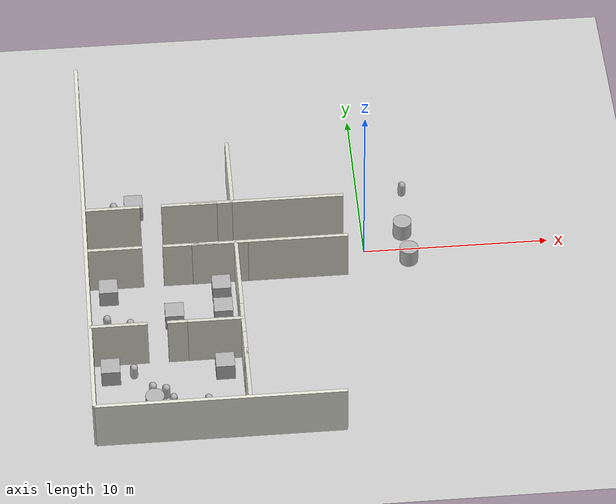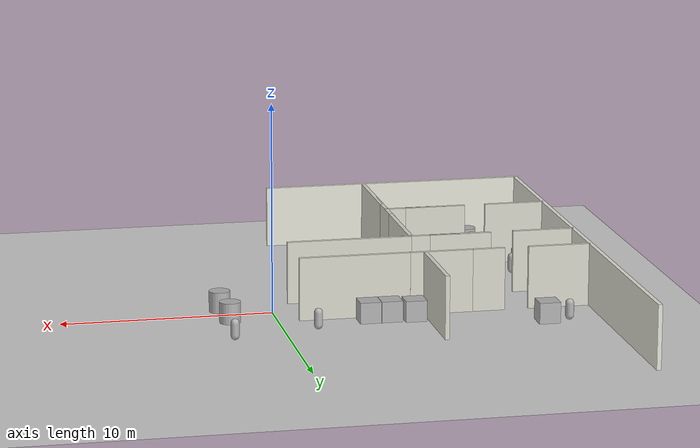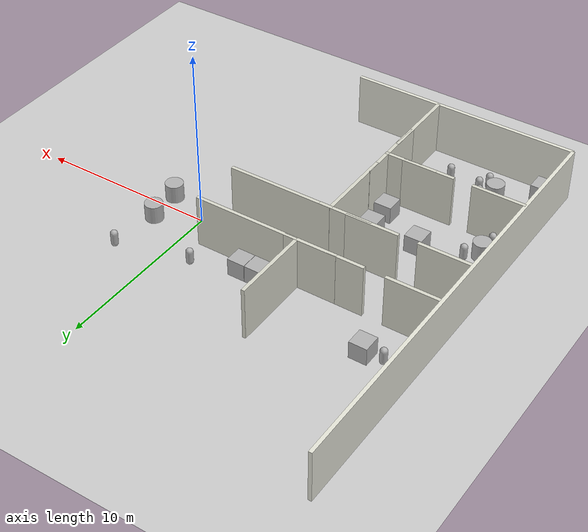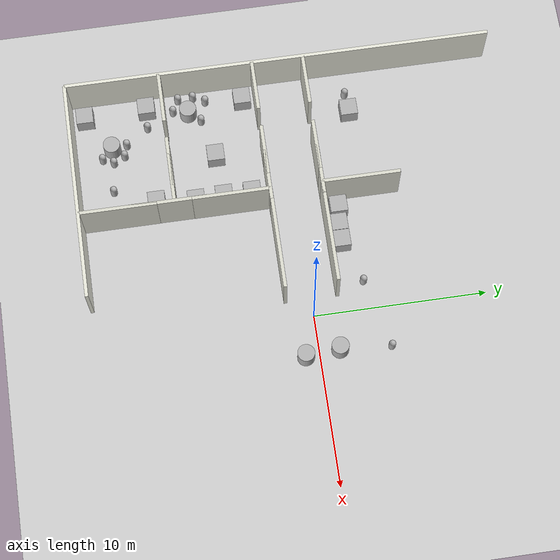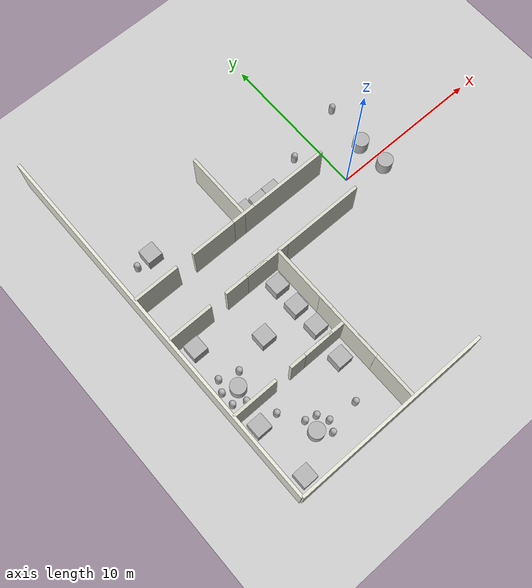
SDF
<sdf version="1.10">
 <world name="default">
  <model name="ground_plane">
   <static>true</static>
   <link name="link">
    <collision name="collision">
     <geometry><plane><normal>0 0 1</normal><size>100 100</size></plane></geometry>
    </collision>
    <visual name="visual">
     <geometry><plane><normal>0 0 1</normal><size>100 100</size></plane></geometry>
     <material>
      <ambient>0.800000012 0.800000012 0.800000012 1</ambient>
      <diffuse>0.800000012 0.800000012 0.800000012 1</diffuse>
      <specular>0.100000001 0.100000001 0.100000001 1</specular>
     </material>
    </visual>
    <inertial>
     <mass>1</mass>
     <inertia><ixx>1</ixx><ixy>0</ixy><ixz>0</ixz><iyy>1</iyy><iyz>0</iyz><izz>1</izz></inertia>
    </inertial>
   </link>
  </model>
  <model name="south_wall_west">
   <static>true</static>
   <pose>-8.5 -12.5 1.5 0 0 0</pose>
   <link name="link">
    <collision name="collision"><geometry><box><size>13 0.20000000000000001 3</size></box></geometry></collision>
    <visual name="visual">
     <geometry><box><size>13 0.20000000000000001 3</size></box></geometry>
     <material>
      <ambient>0.899999976 0.899999976 0.850000024 1</ambient>
      <diffuse>0.899999976 0.899999976 0.850000024 1</diffuse>
     </material>
    </visual>
    <inertial>
     <mass>1</mass>
     <inertia><ixx>1</ixx><ixy>0</ixy><ixz>0</ixz><iyy>1</iyy><iyz>0</iyz><izz>1</izz></inertia>
    </inertial>
   </link>
  </model>
  <model name="west_wall">
   <static>true</static>
   <pose>-15 0 1.5 0 0 0</pose>
   <link name="link">
    <collision name="collision"><geometry><box><size>0.20000000000000001 25 3</size></box></geometry></collision>
    <visual name="visual">
     <geometry><box><size>0.20000000000000001 25 3</size></box></geometry>
     <material>
      <ambient>0.899999976 0.899999976 0.850000024 1</ambient>
      <diffuse>0.899999976 0.899999976 0.850000024 1</diffuse>
     </material>
    </visual>
    <inertial>
     <mass>1</mass>
     <inertia><ixx>1</ixx><ixy>0</ixy><ixz>0</ixz><iyy>1</iyy><iyz>0</iyz><izz>1</izz></inertia>
    </inertial>
   </link>
  </model>
  <model name="v_wall_m7_n1">
   <static>true</static>
   <pose>-7 3.75 1.5 0 0 0</pose>
   <link name="link">
    <collision name="collision"><geometry><box><size>0.20000000000000001 4.5 3</size></box></geometry></collision>
    <visual name="visual">
     <geometry><box><size>0.20000000000000001 4.5 3</size></box></geometry>
     <material>
      <ambient>0.850000024 0.850000024 0.800000012 1</ambient>
      <diffuse>0.850000024 0.850000024 0.800000012 1</diffuse>
     </material>
    </visual>
    <inertial>
     <mass>1</mass>
     <inertia><ixx>1</ixx><ixy>0</ixy><ixz>0</ixz><iyy>1</iyy><iyz>0</iyz><izz>1</izz></inertia>
    </inertial>
   </link>
  </model>
  <model name="v_wall_m7_s1">
   <static>true</static>
   <pose>-7 -3.75 1.5 0 0 0</pose>
   <link name="link">
    <collision name="collision"><geometry><box><size>0.20000000000000001 4.5 3</size></box></geometry></collision>
    <visual name="visual">
     <geometry><box><size>0.20000000000000001 4.5 3</size></box></geometry>
     <material>
      <ambient>0.850000024 0.850000024 0.800000012 1</ambient>
      <diffuse>0.850000024 0.850000024 0.800000012 1</diffuse>
     </material>
    </visual>
    <inertial>
     <mass>1</mass>
     <inertia><ixx>1</ixx><ixy>0</ixy><ixz>0</ixz><iyy>1</iyy><iyz>0</iyz><izz>1</izz></inertia>
    </inertial>
   </link>
  </model>
  <model name="v_wall_m7_s2">
   <static>true</static>
   <pose>-7 -10.25 1.5 0 0 0</pose>
   <link name="link">
    <collision name="collision"><geometry><box><size>0.20000000000000001 4.5 3</size></box></geometry></collision>
    <visual name="visual">
     <geometry><box><size>0.20000000000000001 4.5 3</size></box></geometry>
     <material>
      <ambient>0.850000024 0.850000024 0.800000012 1</ambient>
      <diffuse>0.850000024 0.850000024 0.800000012 1</diffuse>
     </material>
    </visual>
    <inertial>
     <mass>1</mass>
     <inertia><ixx>1</ixx><ixy>0</ixy><ixz>0</ixz><iyy>1</iyy><iyz>0</iyz><izz>1</izz></inertia>
    </inertial>
   </link>
  </model>
  <model name="h_wall_p1_5_seg1_1">
   <static>true</static>
   <pose>-13.468185424804688 1.5 1.5 0 0 0</pose>
   <link name="link">
    <collision name="collision"><geometry><box><size>3 0.20000000000000001 3</size></box></geometry></collision>
    <visual name="visual">
     <geometry><box><size>3 0.20000000000000001 3</size></box></geometry>
     <material>
      <ambient>0.850000024 0.850000024 0.800000012 1</ambient>
      <diffuse>0.850000024 0.850000024 0.800000012 1</diffuse>
     </material>
    </visual>
    <inertial>
     <mass>1</mass>
     <inertia><ixx>1</ixx><ixy>0</ixy><ixz>0</ixz><iyy>1</iyy><iyz>0</iyz><izz>1</izz></inertia>
    </inertial>
   </link>
  </model>
  <model name="h_wall_p1_5_seg1_2">
   <static>true</static>
   <pose>-9.3216009140014648 1.5 1.5 0 0 0</pose>
   <link name="link">
    <collision name="collision"><geometry><box><size>3 0.20000000000000001 3</size></box></geometry></collision>
    <visual name="visual">
     <geometry><box><size>3 0.20000000000000001 3</size></box></geometry>
     <material>
      <ambient>0.850000024 0.850000024 0.800000012 1</ambient>
      <diffuse>0.850000024 0.850000024 0.800000012 1</diffuse>
     </material>
    </visual>
    <inertial>
     <mass>1</mass>
     <inertia><ixx>1</ixx><ixy>0</ixy><ixz>0</ixz><iyy>1</iyy><iyz>0</iyz><izz>1</izz></inertia>
    </inertial>
   </link>
  </model>
  <model name="h_wall_p1_5_seg2_1">
   <static>true</static>
   <pose>-4 1.5 1.5 0 0 0</pose>
   <link name="link">
    <collision name="collision"><geometry><box><size>6 0.20000000000000001 3</size></box></geometry></collision>
    <visual name="visual">
     <geometry><box><size>6 0.20000000000000001 3</size></box></geometry>
     <material>
      <ambient>0.850000024 0.850000024 0.800000012 1</ambient>
      <diffuse>0.850000024 0.850000024 0.800000012 1</diffuse>
     </material>
    </visual>
    <inertial>
     <mass>1</mass>
     <inertia><ixx>1</ixx><ixy>0</ixy><ixz>0</ixz><iyy>1</iyy><iyz>0</iyz><izz>1</izz></inertia>
    </inertial>
   </link>
  </model>
  <model name="h_wall_m1_5_seg1_1">
   <static>true</static>
   <pose>-13.5 -1.5 1.5 0 0 0</pose>
   <link name="link">
    <collision name="collision"><geometry><box><size>3 0.20000000000000001 3</size></box></geometry></collision>
    <visual name="visual">
     <geometry><box><size>3 0.20000000000000001 3</size></box></geometry>
     <material>
      <ambient>0.850000024 0.850000024 0.800000012 1</ambient>
      <diffuse>0.850000024 0.850000024 0.800000012 1</diffuse>
     </material>
    </visual>
    <inertial>
     <mass>1</mass>
     <inertia><ixx>1</ixx><ixy>0</ixy><ixz>0</ixz><iyy>1</iyy><iyz>0</iyz><izz>1</izz></inertia>
    </inertial>
   </link>
  </model>
  <model name="h_wall_m1_5_seg1_2">
   <static>true</static>
   <pose>-9.4130010604858398 -1.5 1.5 0 0 0</pose>
   <link name="link">
    <collision name="collision"><geometry><box><size>3 0.20000000000000001 3</size></box></geometry></collision>
    <visual name="visual">
     <geometry><box><size>3 0.20000000000000001 3</size></box></geometry>
     <material>
      <ambient>0.850000024 0.850000024 0.800000012 1</ambient>
      <diffuse>0.850000024 0.850000024 0.800000012 1</diffuse>
     </material>
    </visual>
    <inertial>
     <mass>1</mass>
     <inertia><ixx>1</ixx><ixy>0</ixy><ixz>0</ixz><iyy>1</iyy><iyz>0</iyz><izz>1</izz></inertia>
    </inertial>
   </link>
  </model>
  <model name="h_wall_m1_5_seg2_1">
   <static>true</static>
   <pose>-4 -1.5 1.5 0 0 0</pose>
   <link name="link">
    <collision name="collision"><geometry><box><size>6 0.20000000000000001 3</size></box></geometry></collision>
    <visual name="visual">
     <geometry><box><size>6 0.20000000000000001 3</size></box></geometry>
     <material>
      <ambient>0.850000024 0.850000024 0.800000012 1</ambient>
      <diffuse>0.850000024 0.850000024 0.800000012 1</diffuse>
     </material>
    </visual>
    <inertial>
     <mass>1</mass>
     <inertia><ixx>1</ixx><ixy>0</ixy><ixz>0</ixz><iyy>1</iyy><iyz>0</iyz><izz>1</izz></inertia>
    </inertial>
   </link>
  </model>
  <model name="h_wall_m7_seg1_1">
   <static>true</static>
   <pose>-13.5 -7 1.5 0 0 0</pose>
   <link name="link">
    <collision name="collision"><geometry><box><size>3 0.20000000000000001 3</size></box></geometry></collision>
    <visual name="visual">
     <geometry><box><size>3 0.20000000000000001 3</size></box></geometry>
     <material>
      <ambient>0.850000024 0.850000024 0.800000012 1</ambient>
      <diffuse>0.850000024 0.850000024 0.800000012 1</diffuse>
     </material>
    </visual>
    <inertial>
     <mass>1</mass>
     <inertia><ixx>1</ixx><ixy>0</ixy><ixz>0</ixz><iyy>1</iyy><iyz>0</iyz><izz>1</izz></inertia>
    </inertial>
   </link>
  </model>
  <model name="h_wall_m7_seg1_2">
   <static>true</static>
   <pose>-9.4609384536743164 -7 1.5 0 0 0</pose>
   <link name="link">
    <collision name="collision"><geometry><box><size>3 0.20000000000000001 3</size></box></geometry></collision>
    <visual name="visual">
     <geometry><box><size>3 0.20000000000000001 3</size></box></geometry>
     <material>
      <ambient>0.850000024 0.850000024 0.800000012 1</ambient>
      <diffuse>0.850000024 0.850000024 0.800000012 1</diffuse>
     </material>
    </visual>
    <inertial>
     <mass>1</mass>
     <inertia><ixx>1</ixx><ixy>0</ixy><ixz>0</ixz><iyy>1</iyy><iyz>0</iyz><izz>1</izz></inertia>
    </inertial>
   </link>
  </model>
  <model name="v_wall_m7_n1_4">
   <static>true</static>
   <pose>-7.0079871012456065 -7.3319602976590579 1.5 0 0 0</pose>
   <link name="link">
    <collision name="collision"><geometry><box><size>0.20000000000000001 4.5 3</size></box></geometry></collision>
    <visual name="visual">
     <geometry><box><size>0.20000000000000001 4.5 3</size></box></geometry>
     <material>
      <ambient>0.850000024 0.850000024 0.800000012 1</ambient>
      <diffuse>0.850000024 0.850000024 0.800000012 1</diffuse>
     </material>
    </visual>
    <inertial>
     <mass>1</mass>
     <inertia><ixx>1</ixx><ixy>0</ixy><ixz>0</ixz><iyy>1</iyy><iyz>0</iyz><izz>1</izz></inertia>
    </inertial>
   </link>
  </model>
  <model name="h_wall_m7_seg1_2_1">
   <static>true</static>
   <pose>-8.4126858874969415 -7.0020169151065623 1.5 0 0 0</pose>
   <link name="link">
    <collision name="collision"><geometry><box><size>3 0.20000000000000001 3</size></box></geometry></collision>
    <visual name="visual">
     <geometry><box><size>3 0.20000000000000001 3</size></box></geometry>
     <material>
      <ambient>0.850000024 0.850000024 0.800000012 1</ambient>
      <diffuse>0.850000024 0.850000024 0.800000012 1</diffuse>
     </material>
    </visual>
    <inertial>
     <mass>1</mass>
     <inertia><ixx>1</ixx><ixy>0</ixy><ixz>0</ixz><iyy>1</iyy><iyz>0</iyz><izz>1</izz></inertia>
    </inertial>
   </link>
  </model>
  <model name="h_wall_m7_seg1_2_2">
   <static>true</static>
   <pose>-7.8554236444477405 -1.5075810255903455 1.5 0 0 0</pose>
   <link name="link">
    <collision name="collision"><geometry><box><size>3 0.20000000000000001 3</size></box></geometry></collision>
    <visual name="visual">
     <geometry><box><size>3 0.20000000000000001 3</size></box></geometry>
     <material>
      <ambient>0.850000024 0.850000024 0.800000012 1</ambient>
      <diffuse>0.850000024 0.850000024 0.800000012 1</diffuse>
     </material>
    </visual>
    <inertial>
     <mass>1</mass>
     <inertia><ixx>1</ixx><ixy>0</ixy><ixz>0</ixz><iyy>1</iyy><iyz>0</iyz><izz>1</izz></inertia>
    </inertial>
   </link>
  </model>
  <model name="h_wall_m7_seg1_2_3">
   <static>true</static>
   <pose>-7.7709027079527218 1.5024162647538466 1.5 0 0 0</pose>
   <link name="link">
    <collision name="collision"><geometry><box><size>3 0.20000000000000001 3</size></box></geometry></collision>
    <visual name="visual">
     <geometry><box><size>3 0.20000000000000001 3</size></box></geometry>
     <material>
      <ambient>0.850000024 0.850000024 0.800000012 1</ambient>
      <diffuse>0.850000024 0.850000024 0.800000012 1</diffuse>
     </material>
    </visual>
    <inertial>
     <mass>1</mass>
     <inertia><ixx>1</ixx><ixy>0</ixy><ixz>0</ixz><iyy>1</iyy><iyz>0</iyz><izz>1</izz></inertia>
    </inertial>
   </link>
  </model>
  <model name="capsule">
   <static>true</static>
   <pose>-9.067462361217947 -10.474388385116022 0.5 0 0 0</pose>
   <link name="capsule_link">
    <inertial>
     <inertia>
      <ixx>0.074153999999999998</ixx>
      <ixy>0</ixy>
      <ixz>0</ixz>
      <iyy>0.074153999999999998</iyy>
      <iyz>0</iyz>
      <izz>0.018769000000000001</izz>
     </inertia>
     <mass>1</mass>
    </inertial>
    <collision name="capsule_collision">
     <geometry>
      <capsule><radius>0.20000000000000001</radius><length>0.59999999999999998</length></capsule>
     </geometry>
    </collision>
    <visual name="capsule_visual">
     <geometry>
      <capsule><radius>0.20000000000000001</radius><length>0.59999999999999998</length></capsule>
     </geometry>
     <material>
      <ambient>0.300000012 0.300000012 0.300000012 1</ambient>
      <diffuse>0.699999988 0.699999988 0.699999988 1</diffuse>
      <specular>1 1 1 1</specular>
     </material>
    </visual>
   </link>
   <static>false</static>
  </model>
  <model name="capsule_0">
   <static>true</static>
   <pose>-12.843148425765175 -8.0715135897866794 0.5 0 0 0</pose>
   <link name="capsule_link">
    <inertial>
     <inertia>
      <ixx>0.074153999999999998</ixx>
      <ixy>0</ixy>
      <ixz>0</ixz>
      <iyy>0.074153999999999998</iyy>
      <iyz>0</iyz>
      <izz>0.018769000000000001</izz>
     </inertia>
     <mass>1</mass>
    </inertial>
    <collision name="capsule_collision">
     <geometry>
      <capsule><radius>0.20000000000000001</radius><length>0.59999999999999998</length></capsule>
     </geometry>
    </collision>
    <visual name="capsule_visual">
     <geometry>
      <capsule><radius>0.20000000000000001</radius><length>0.59999999999999998</length></capsule>
     </geometry>
     <material>
      <ambient>0.300000012 0.300000012 0.300000012 1</ambient>
      <diffuse>0.699999988 0.699999988 0.699999988 1</diffuse>
      <specular>1 1 1 1</specular>
     </material>
    </visual>
   </link>
   <static>false</static>
  </model>
  <model name="cylinder">
   <static>true</static>
   <pose>-11.84359305769536 -10.279714638927015 0.5 0 0 0</pose>
   <link name="cylinder_link">
    <inertial>
     <inertia>
      <ixx>0.14580000000000001</ixx>
      <ixy>0</ixy>
      <ixz>0</ixz>
      <iyy>0.14580000000000001</iyy>
      <iyz>0</iyz>
      <izz>0.125</izz>
     </inertia>
     <mass>1</mass>
    </inertial>
    <collision name="cylinder_collision">
     <geometry><cylinder><radius>0.5</radius><length>1</length></cylinder></geometry>
    </collision>
    <visual name="cylinder_visual">
     <geometry><cylinder><radius>0.5</radius><length>1</length></cylinder></geometry>
     <material>
      <ambient>0.300000012 0.300000012 0.300000012 1</ambient>
      <diffuse>0.699999988 0.699999988 0.699999988 1</diffuse>
      <specular>1 1 1 1</specular>
     </material>
    </visual>
   </link>
   <static>false</static>
  </model>
  <model name="capsule_1">
   <static>true</static>
   <pose>-11.183160962634393 -10.9036380439401 0.5 0 0 0</pose>
   <link name="capsule_link">
    <inertial>
     <inertia>
      <ixx>0.074153999999999998</ixx>
      <ixy>0</ixy>
      <ixz>0</ixz>
      <iyy>0.074153999999999998</iyy>
      <iyz>0</iyz>
      <izz>0.018769000000000001</izz>
     </inertia>
     <mass>1</mass>
    </inertial>
    <collision name="capsule_collision">
     <geometry>
      <capsule><radius>0.20000000000000001</radius><length>0.59999999999999998</length></capsule>
     </geometry>
    </collision>
    <visual name="capsule_visual">
     <geometry>
      <capsule><radius>0.20000000000000001</radius><length>0.59999999999999998</length></capsule>
     </geometry>
     <material>
      <ambient>0.300000012 0.300000012 0.300000012 1</ambient>
      <diffuse>0.699999988 0.699999988 0.699999988 1</diffuse>
      <specular>1 1 1 1</specular>
     </material>
    </visual>
   </link>
   <static>false</static>
  </model>
  <model name="capsule_2">
   <static>true</static>
   <pose>-10.880404267954967 -10.277190470985687 0.5 0 0 0</pose>
   <link name="capsule_link">
    <inertial>
     <inertia>
      <ixx>0.074153999999999998</ixx>
      <ixy>0</ixy>
      <ixz>0</ixz>
      <iyy>0.074153999999999998</iyy>
      <iyz>0</iyz>
      <izz>0.018769000000000001</izz>
     </inertia>
     <mass>1</mass>
    </inertial>
    <collision name="capsule_collision">
     <geometry>
      <capsule><radius>0.20000000000000001</radius><length>0.59999999999999998</length></capsule>
     </geometry>
    </collision>
    <visual name="capsule_visual">
     <geometry>
      <capsule><radius>0.20000000000000001</radius><length>0.59999999999999998</length></capsule>
     </geometry>
     <material>
      <ambient>0.300000012 0.300000012 0.300000012 1</ambient>
      <diffuse>0.699999988 0.699999988 0.699999988 1</diffuse>
      <specular>1 1 1 1</specular>
     </material>
    </visual>
   </link>
   <static>false</static>
  </model>
  <model name="capsule_3">
   <static>true</static>
   <pose>-11.233941003786308 -9.6075485591413941 0.5 0 0 0</pose>
   <link name="capsule_link">
    <inertial>
     <inertia>
      <ixx>0.074153999999999998</ixx>
      <ixy>0</ixy>
      <ixz>0</ixz>
      <iyy>0.074153999999999998</iyy>
      <iyz>0</iyz>
      <izz>0.018769000000000001</izz>
     </inertia>
     <mass>1</mass>
    </inertial>
    <collision name="capsule_collision">
     <geometry>
      <capsule><radius>0.20000000000000001</radius><length>0.59999999999999998</length></capsule>
     </geometry>
    </collision>
    <visual name="capsule_visual">
     <geometry>
      <capsule><radius>0.20000000000000001</radius><length>0.59999999999999998</length></capsule>
     </geometry>
     <material>
      <ambient>0.300000012 0.300000012 0.300000012 1</ambient>
      <diffuse>0.699999988 0.699999988 0.699999988 1</diffuse>
      <specular>1 1 1 1</specular>
     </material>
    </visual>
   </link>
   <static>false</static>
  </model>
  <model name="capsule_4">
   <static>true</static>
   <pose>-11.917475067567963 -9.4087088568049886 0.5 0 0 0</pose>
   <link name="capsule_link">
    <inertial>
     <inertia>
      <ixx>0.074153999999999998</ixx>
      <ixy>0</ixy>
      <ixz>0</ixz>
      <iyy>0.074153999999999998</iyy>
      <iyz>0</iyz>
      <izz>0.018769000000000001</izz>
     </inertia>
     <mass>1</mass>
    </inertial>
    <collision name="capsule_collision">
     <geometry>
      <capsule><radius>0.20000000000000001</radius><length>0.59999999999999998</length></capsule>
     </geometry>
    </collision>
    <visual name="capsule_visual">
     <geometry>
      <capsule><radius>0.20000000000000001</radius><length>0.59999999999999998</length></capsule>
     </geometry>
     <material>
      <ambient>0.300000012 0.300000012 0.300000012 1</ambient>
      <diffuse>0.699999988 0.699999988 0.699999988 1</diffuse>
      <specular>1 1 1 1</specular>
     </material>
    </visual>
   </link>
   <static>false</static>
  </model>
  <model name="box">
   <static>true</static>
   <pose>-13.94106556582285 -11.666850543528293 0.5 0 0 0</pose>
   <link name="box_link">
    <inertial>
     <inertia><ixx>0.16666</ixx><ixy>0</ixy><ixz>0</ixz><iyy>0.16666</iyy><iyz>0</iyz><izz>0.16666</izz></inertia>
     <mass>1</mass>
    </inertial>
    <collision name="box_collision"><geometry><box><size>1 1 1</size></box></geometry></collision>
    <visual name="box_visual">
     <geometry><box><size>1 1 1</size></box></geometry>
     <material>
      <ambient>0.300000012 0.300000012 0.300000012 1</ambient>
      <diffuse>0.699999988 0.699999988 0.699999988 1</diffuse>
      <specular>1 1 1 1</specular>
     </material>
    </visual>
   </link>
   <static>false</static>
  </model>
  <model name="box_0">
   <static>true</static>
   <pose>-8.0485249547837707 -8.0638953320809392 0.5 0 0 0</pose>
   <link name="box_link">
    <inertial>
     <inertia><ixx>0.16666</ixx><ixy>0</ixy><ixz>0</ixz><iyy>0.16666</iyy><iyz>0</iyz><izz>0.16666</izz></inertia>
     <mass>1</mass>
    </inertial>
    <collision name="box_collision"><geometry><box><size>1 1 1</size></box></geometry></collision>
    <visual name="box_visual">
     <geometry><box><size>1 1 1</size></box></geometry>
     <material>
      <ambient>0.300000012 0.300000012 0.300000012 1</ambient>
      <diffuse>0.699999988 0.699999988 0.699999988 1</diffuse>
      <specular>1 1 1 1</specular>
     </material>
    </visual>
   </link>
   <static>false</static>
  </model>
  <model name="box_1">
   <static>true</static>
   <pose>-14.058826356557514 -8.0066225338777386 0.5 0 0 0</pose>
   <link name="box_link">
    <inertial>
     <inertia><ixx>0.16666</ixx><ixy>0</ixy><ixz>0</ixz><iyy>0.16666</iyy><iyz>0</iyz><izz>0.16666</izz></inertia>
     <mass>1</mass>
    </inertial>
    <collision name="box_collision"><geometry><box><size>1 1 1</size></box></geometry></collision>
    <visual name="box_visual">
     <geometry><box><size>1 1 1</size></box></geometry>
     <material>
      <ambient>0.300000012 0.300000012 0.300000012 1</ambient>
      <diffuse>0.699999988 0.699999988 0.699999988 1</diffuse>
      <specular>1 1 1 1</specular>
     </material>
    </visual>
   </link>
   <static>false</static>
  </model>
  <model name="cylinder_0">
   <static>true</static>
   <pose>-13.530111643639829 -5.567035307923792 0.5 0 0 0</pose>
   <link name="cylinder_link">
    <inertial>
     <inertia>
      <ixx>0.14580000000000001</ixx>
      <ixy>0</ixy>
      <ixz>0</ixz>
      <iyy>0.14580000000000001</iyy>
      <iyz>0</iyz>
      <izz>0.125</izz>
     </inertia>
     <mass>1</mass>
    </inertial>
    <collision name="cylinder_collision">
     <geometry><cylinder><radius>0.5</radius><length>1</length></cylinder></geometry>
    </collision>
    <visual name="cylinder_visual">
     <geometry><cylinder><radius>0.5</radius><length>1</length></cylinder></geometry>
     <material>
      <ambient>0.300000012 0.300000012 0.300000012 1</ambient>
      <diffuse>0.699999988 0.699999988 0.699999988 1</diffuse>
      <specular>1 1 1 1</specular>
     </material>
    </visual>
   </link>
   <static>false</static>
  </model>
  <model name="capsule_5">
   <static>true</static>
   <pose>-14.085505936820644 -4.4913171230011599 0.5 0 0 0</pose>
   <link name="capsule_link">
    <inertial>
     <inertia>
      <ixx>0.074153999999999998</ixx>
      <ixy>0</ixy>
      <ixz>0</ixz>
      <iyy>0.074153999999999998</iyy>
      <iyz>0</iyz>
      <izz>0.018769000000000001</izz>
     </inertia>
     <mass>1</mass>
    </inertial>
    <collision name="capsule_collision">
     <geometry>
      <capsule><radius>0.20000000000000001</radius><length>0.59999999999999998</length></capsule>
     </geometry>
    </collision>
    <visual name="capsule_visual">
     <geometry>
      <capsule><radius>0.20000000000000001</radius><length>0.59999999999999998</length></capsule>
     </geometry>
     <material>
      <ambient>0.300000012 0.300000012 0.300000012 1</ambient>
      <diffuse>0.699999988 0.699999988 0.699999988 1</diffuse>
      <specular>1 1 1 1</specular>
     </material>
    </visual>
   </link>
   <static>false</static>
  </model>
  <model name="capsule_6">
   <static>true</static>
   <pose>-12.869999638893912 -4.8715380689727237 0.5 0 0 0</pose>
   <link name="capsule_link">
    <inertial>
     <inertia>
      <ixx>0.074153999999999998</ixx>
      <ixy>0</ixy>
      <ixz>0</ixz>
      <iyy>0.074153999999999998</iyy>
      <iyz>0</iyz>
      <izz>0.018769000000000001</izz>
     </inertia>
     <mass>1</mass>
    </inertial>
    <collision name="capsule_collision">
     <geometry>
      <capsule><radius>0.20000000000000001</radius><length>0.59999999999999998</length></capsule>
     </geometry>
    </collision>
    <visual name="capsule_visual">
     <geometry>
      <capsule><radius>0.20000000000000001</radius><length>0.59999999999999998</length></capsule>
     </geometry>
     <material>
      <ambient>0.300000012 0.300000012 0.300000012 1</ambient>
      <diffuse>0.699999988 0.699999988 0.699999988 1</diffuse>
      <specular>1 1 1 1</specular>
     </material>
    </visual>
   </link>
   <static>false</static>
  </model>
  <model name="capsule_7">
   <static>true</static>
   <pose>-13.673540400704441 -6.4558503582630351 0.5 0 0 0</pose>
   <link name="capsule_link">
    <inertial>
     <inertia>
      <ixx>0.074153999999999998</ixx>
      <ixy>0</ixy>
      <ixz>0</ixz>
      <iyy>0.074153999999999998</iyy>
      <iyz>0</iyz>
      <izz>0.018769000000000001</izz>
     </inertia>
     <mass>1</mass>
    </inertial>
    <collision name="capsule_collision">
     <geometry>
      <capsule><radius>0.20000000000000001</radius><length>0.59999999999999998</length></capsule>
     </geometry>
    </collision>
    <visual name="capsule_visual">
     <geometry>
      <capsule><radius>0.20000000000000001</radius><length>0.59999999999999998</length></capsule>
     </geometry>
     <material>
      <ambient>0.300000012 0.300000012 0.300000012 1</ambient>
      <diffuse>0.699999988 0.699999988 0.699999988 1</diffuse>
      <specular>1 1 1 1</specular>
     </material>
    </visual>
   </link>
   <static>false</static>
  </model>
  <model name="capsule_8">
   <static>true</static>
   <pose>-14.393509297901403 -6.0869832064108644 0.5 0 0 0</pose>
   <link name="capsule_link">
    <inertial>
     <inertia>
      <ixx>0.074153999999999998</ixx>
      <ixy>0</ixy>
      <ixz>0</ixz>
      <iyy>0.074153999999999998</iyy>
      <iyz>0</iyz>
      <izz>0.018769000000000001</izz>
     </inertia>
     <mass>1</mass>
    </inertial>
    <collision name="capsule_collision">
     <geometry>
      <capsule><radius>0.20000000000000001</radius><length>0.59999999999999998</length></capsule>
     </geometry>
    </collision>
    <visual name="capsule_visual">
     <geometry>
      <capsule><radius>0.20000000000000001</radius><length>0.59999999999999998</length></capsule>
     </geometry>
     <material>
      <ambient>0.300000012 0.300000012 0.300000012 1</ambient>
      <diffuse>0.699999988 0.699999988 0.699999988 1</diffuse>
      <specular>1 1 1 1</specular>
     </material>
    </visual>
   </link>
   <static>false</static>
  </model>
  <model name="capsule_9">
   <static>true</static>
   <pose>-14.42635912983561 -5.1938945770384581 0.5 0 0 0</pose>
   <link name="capsule_link">
    <inertial>
     <inertia>
      <ixx>0.074153999999999998</ixx>
      <ixy>0</ixy>
      <ixz>0</ixz>
      <iyy>0.074153999999999998</iyy>
      <iyz>0</iyz>
      <izz>0.018769000000000001</izz>
     </inertia>
     <mass>1</mass>
    </inertial>
    <collision name="capsule_collision">
     <geometry>
      <capsule><radius>0.20000000000000001</radius><length>0.59999999999999998</length></capsule>
     </geometry>
    </collision>
    <visual name="capsule_visual">
     <geometry>
      <capsule><radius>0.20000000000000001</radius><length>0.59999999999999998</length></capsule>
     </geometry>
     <material>
      <ambient>0.300000012 0.300000012 0.300000012 1</ambient>
      <diffuse>0.699999988 0.699999988 0.699999988 1</diffuse>
      <specular>1 1 1 1</specular>
     </material>
    </visual>
   </link>
   <static>false</static>
  </model>
  <model name="box_2">
   <static>true</static>
   <pose>-13.923117434117009 -2.3015535335168757 0.5 0 0 0</pose>
   <link name="box_link">
    <inertial>
     <inertia><ixx>0.16666</ixx><ixy>0</ixy><ixz>0</ixz><iyy>0.16666</iyy><iyz>0</iyz><izz>0.16666</izz></inertia>
     <mass>1</mass>
    </inertial>
    <collision name="box_collision"><geometry><box><size>1 1 1</size></box></geometry></collision>
    <visual name="box_visual">
     <geometry><box><size>1 1 1</size></box></geometry>
     <material>
      <ambient>0.300000012 0.300000012 0.300000012 1</ambient>
      <diffuse>0.699999988 0.699999988 0.699999988 1</diffuse>
      <specular>1 1 1 1</specular>
     </material>
    </visual>
   </link>
   <static>false</static>
  </model>
  <model name="box_3">
   <static>true</static>
   <pose>-7.8824809961297131 -2.4728878978278246 0.5 0 0 0</pose>
   <link name="box_link">
    <inertial>
     <inertia><ixx>0.16666</ixx><ixy>0</ixy><ixz>0</ixz><iyy>0.16666</iyy><iyz>0</iyz><izz>0.16666</izz></inertia>
     <mass>1</mass>
    </inertial>
    <collision name="box_collision"><geometry><box><size>1 1 1</size></box></geometry></collision>
    <visual name="box_visual">
     <geometry><box><size>1 1 1</size></box></geometry>
     <material>
      <ambient>0.300000012 0.300000012 0.300000012 1</ambient>
      <diffuse>0.699999988 0.699999988 0.699999988 1</diffuse>
      <specular>1 1 1 1</specular>
     </material>
    </visual>
   </link>
   <static>false</static>
  </model>
  <model name="box_3_1">
   <static>true</static>
   <pose>-7.8882337620401479 -4.1263179319683481 0.5 0 0 0</pose>
   <link name="box_link">
    <inertial>
     <inertia><ixx>0.16666</ixx><ixy>0</ixy><ixz>0</ixz><iyy>0.16666</iyy><iyz>0</iyz><izz>0.16666</izz></inertia>
     <mass>1</mass>
    </inertial>
    <collision name="box_collision"><geometry><box><size>1 1 1</size></box></geometry></collision>
    <visual name="box_visual">
     <geometry><box><size>1 1 1</size></box></geometry>
     <material>
      <ambient>0.300000012 0.300000012 0.300000012 1</ambient>
      <diffuse>0.699999988 0.699999988 0.699999988 1</diffuse>
      <specular>1 1 1 1</specular>
     </material>
    </visual>
   </link>
   <static>false</static>
  </model>
  <model name="box_3_2">
   <static>true</static>
   <pose>-7.819488917972012 -5.7715507815266536 0.5 0 0 0</pose>
   <link name="box_link">
    <inertial>
     <inertia><ixx>0.16666</ixx><ixy>0</ixy><ixz>0</ixz><iyy>0.16666</iyy><iyz>0</iyz><izz>0.16666</izz></inertia>
     <mass>1</mass>
    </inertial>
    <collision name="box_collision"><geometry><box><size>1 1 1</size></box></geometry></collision>
    <visual name="box_visual">
     <geometry><box><size>1 1 1</size></box></geometry>
     <material>
      <ambient>0.300000012 0.300000012 0.300000012 1</ambient>
      <diffuse>0.699999988 0.699999988 0.699999988 1</diffuse>
      <specular>1 1 1 1</specular>
     </material>
    </visual>
   </link>
   <static>false</static>
  </model>
  <model name="box_4">
   <static>true</static>
   <pose>-10.499721507696014 -4.2989897400755668 0.5 0 0 0</pose>
   <link name="box_link">
    <inertial>
     <inertia><ixx>0.16666</ixx><ixy>0</ixy><ixz>0</ixz><iyy>0.16666</iyy><iyz>0</iyz><izz>0.16666</izz></inertia>
     <mass>1</mass>
    </inertial>
    <collision name="box_collision"><geometry><box><size>1 1 1</size></box></geometry></collision>
    <visual name="box_visual">
     <geometry><box><size>1 1 1</size></box></geometry>
     <material>
      <ambient>0.300000012 0.300000012 0.300000012 1</ambient>
      <diffuse>0.699999988 0.699999988 0.699999988 1</diffuse>
      <specular>1 1 1 1</specular>
     </material>
    </visual>
   </link>
   <static>false</static>
  </model>
  <model name="box_7">
   <static>true</static>
   <pose>-12.289624747185149 3.8733784656141492 0.5 0 0 0</pose>
   <link name="box_link">
    <inertial>
     <inertia><ixx>0.16666</ixx><ixy>0</ixy><ixz>0</ixz><iyy>0.16666</iyy><iyz>0</iyz><izz>0.16666</izz></inertia>
     <mass>1</mass>
    </inertial>
    <collision name="box_collision"><geometry><box><size>1 1 1</size></box></geometry></collision>
    <visual name="box_visual">
     <geometry><box><size>1 1 1</size></box></geometry>
     <material>
      <ambient>0.300000012 0.300000012 0.300000012 1</ambient>
      <diffuse>0.699999988 0.699999988 0.699999988 1</diffuse>
      <specular>1 1 1 1</specular>
     </material>
    </visual>
   </link>
   <static>false</static>
  </model>
  <model name="capsule_17">
   <static>true</static>
   <pose>-13.368992635630644 3.8115162378394118 0.5 0 0 0</pose>
   <link name="capsule_link">
    <inertial>
     <inertia>
      <ixx>0.074153999999999998</ixx>
      <ixy>0</ixy>
      <ixz>0</ixz>
      <iyy>0.074153999999999998</iyy>
      <iyz>0</iyz>
      <izz>0.018769000000000001</izz>
     </inertia>
     <mass>1</mass>
    </inertial>
    <collision name="capsule_collision">
     <geometry>
      <capsule><radius>0.20000000000000001</radius><length>0.59999999999999998</length></capsule>
     </geometry>
    </collision>
    <visual name="capsule_visual">
     <geometry>
      <capsule><radius>0.20000000000000001</radius><length>0.59999999999999998</length></capsule>
     </geometry>
     <material>
      <ambient>0.300000012 0.300000012 0.300000012 1</ambient>
      <diffuse>0.699999988 0.699999988 0.699999988 1</diffuse>
      <specular>1 1 1 1</specular>
     </material>
    </visual>
   </link>
   <static>false</static>
  </model>
  <model name="cylinder_24">
   <static>true</static>
   <pose>2.2020393848464654 1.1692648385293067 0.5 0 0 0</pose>
   <link name="cylinder_link">
    <inertial>
     <inertia>
      <ixx>0.14580000000000001</ixx>
      <ixy>0</ixy>
      <ixz>0</ixz>
      <iyy>0.14580000000000001</iyy>
      <iyz>0</iyz>
      <izz>0.125</izz>
     </inertia>
     <mass>1</mass>
    </inertial>
    <collision name="cylinder_collision">
     <geometry><cylinder><radius>0.5</radius><length>1</length></cylinder></geometry>
    </collision>
    <visual name="cylinder_visual">
     <geometry><cylinder><radius>0.5</radius><length>1</length></cylinder></geometry>
     <material>
      <ambient>0.300000012 0.300000012 0.300000012 1</ambient>
      <diffuse>0.699999988 0.699999988 0.699999988 1</diffuse>
      <specular>1 1 1 1</specular>
     </material>
    </visual>
   </link>
   <static>false</static>
  </model>
  <model name="cylinder_25">
   <static>true</static>
   <pose>2.3715635715921612 -0.80573525333133622 0.5 0 0 0</pose>
   <link name="cylinder_link">
    <inertial>
     <inertia>
      <ixx>0.14580000000000001</ixx>
      <ixy>0</ixy>
      <ixz>0</ixz>
      <iyy>0.14580000000000001</iyy>
      <iyz>0</iyz>
      <izz>0.125</izz>
     </inertia>
     <mass>1</mass>
    </inertial>
    <collision name="cylinder_collision">
     <geometry><cylinder><radius>0.5</radius><length>1</length></cylinder></geometry>
    </collision>
    <visual name="cylinder_visual">
     <geometry><cylinder><radius>0.5</radius><length>1</length></cylinder></geometry>
     <material>
      <ambient>0.300000012 0.300000012 0.300000012 1</ambient>
      <diffuse>0.699999988 0.699999988 0.699999988 1</diffuse>
      <specular>1 1 1 1</specular>
     </material>
    </visual>
   </link>
   <static>false</static>
  </model>
  <model name="capsule_50">
   <static>true</static>
   <pose>2.464909191802966 4.0954495093423695 0.5 0 0 0</pose>
   <link name="capsule_link">
    <inertial>
     <inertia>
      <ixx>0.074153999999999998</ixx>
      <ixy>0</ixy>
      <ixz>0</ixz>
      <iyy>0.074153999999999998</iyy>
      <iyz>0</iyz>
      <izz>0.018769000000000001</izz>
     </inertia>
     <mass>1</mass>
    </inertial>
    <collision name="capsule_collision">
     <geometry>
      <capsule><radius>0.20000000000000001</radius><length>0.59999999999999998</length></capsule>
     </geometry>
    </collision>
    <visual name="capsule_visual">
     <geometry>
      <capsule><radius>0.20000000000000001</radius><length>0.59999999999999998</length></capsule>
     </geometry>
     <material>
      <ambient>0.300000012 0.300000012 0.300000012 1</ambient>
      <diffuse>0.699999988 0.699999988 0.699999988 1</diffuse>
      <specular>1 1 1 1</specular>
     </material>
    </visual>
   </link>
   <static>false</static>
  </model>
  <model name="capsule_54">
   <static>true</static>
   <pose>-1.5974314218723773 3.0954337977541213 0.5 0 0 0</pose>
   <link name="capsule_link">
    <inertial>
     <inertia>
      <ixx>0.074153999999999998</ixx>
      <ixy>0</ixy>
      <ixz>0</ixz>
      <iyy>0.074153999999999998</iyy>
      <iyz>0</iyz>
      <izz>0.018769000000000001</izz>
     </inertia>
     <mass>1</mass>
    </inertial>
    <collision name="capsule_collision">
     <geometry>
      <capsule><radius>0.20000000000000001</radius><length>0.59999999999999998</length></capsule>
     </geometry>
    </collision>
    <visual name="capsule_visual">
     <geometry>
      <capsule><radius>0.20000000000000001</radius><length>0.59999999999999998</length></capsule>
     </geometry>
     <material>
      <ambient>0.300000012 0.300000012 0.300000012 1</ambient>
      <diffuse>0.699999988 0.699999988 0.699999988 1</diffuse>
      <specular>1 1 1 1</specular>
     </material>
    </visual>
   </link>
   <static>false</static>
  </model>
  <model name="box_33">
   <static>true</static>
   <pose>-4.1568260621533133 2.2102516945176034 0.5 0 0 0</pose>
   <link name="box_link">
    <inertial>
     <inertia><ixx>0.16666</ixx><ixy>0</ixy><ixz>0</ixz><iyy>0.16666</iyy><iyz>0</iyz><izz>0.16666</izz></inertia>
     <mass>1</mass>
    </inertial>
    <collision name="box_collision"><geometry><box><size>1 1 1</size></box></geometry></collision>
    <visual name="box_visual">
     <geometry><box><size>1 1 1</size></box></geometry>
     <material>
      <ambient>0.300000012 0.300000012 0.300000012 1</ambient>
      <diffuse>0.699999988 0.699999988 0.699999988 1</diffuse>
      <specular>1 1 1 1</specular>
     </material>
    </visual>
   </link>
   <static>false</static>
  </model>
  <model name="box_34">
   <static>true</static>
   <pose>-5.1737175035369987 2.2058048028322936 0.5 0 0 0</pose>
   <link name="box_link">
    <inertial>
     <inertia><ixx>0.16666</ixx><ixy>0</ixy><ixz>0</ixz><iyy>0.16666</iyy><iyz>0</iyz><izz>0.16666</izz></inertia>
     <mass>1</mass>
    </inertial>
    <collision name="box_collision"><geometry><box><size>1 1 1</size></box></geometry></collision>
    <visual name="box_visual">
     <geometry><box><size>1 1 1</size></box></geometry>
     <material>
      <ambient>0.300000012 0.300000012 0.300000012 1</ambient>
      <diffuse>0.699999988 0.699999988 0.699999988 1</diffuse>
      <specular>1 1 1 1</specular>
     </material>
    </visual>
   </link>
   <static>false</static>
  </model>
  <model name="box_35">
   <static>true</static>
   <pose>-6.2912704457615405 2.3532141002672184 0.5 0 0 0</pose>
   <link name="box_link">
    <inertial>
     <inertia><ixx>0.16666</ixx><ixy>0</ixy><ixz>0</ixz><iyy>0.16666</iyy><iyz>0</iyz><izz>0.16666</izz></inertia>
     <mass>1</mass>
    </inertial>
    <collision name="box_collision"><geometry><box><size>1 1 1</size></box></geometry></collision>
    <visual name="box_visual">
     <geometry><box><size>1 1 1</size></box></geometry>
     <material>
      <ambient>0.300000012 0.300000012 0.300000012 1</ambient>
      <diffuse>0.699999988 0.699999988 0.699999988 1</diffuse>
      <specular>1 1 1 1</specular>
     </material>
    </visual>
   </link>
   <static>false</static>
  </model>
 </world>
</sdf>
